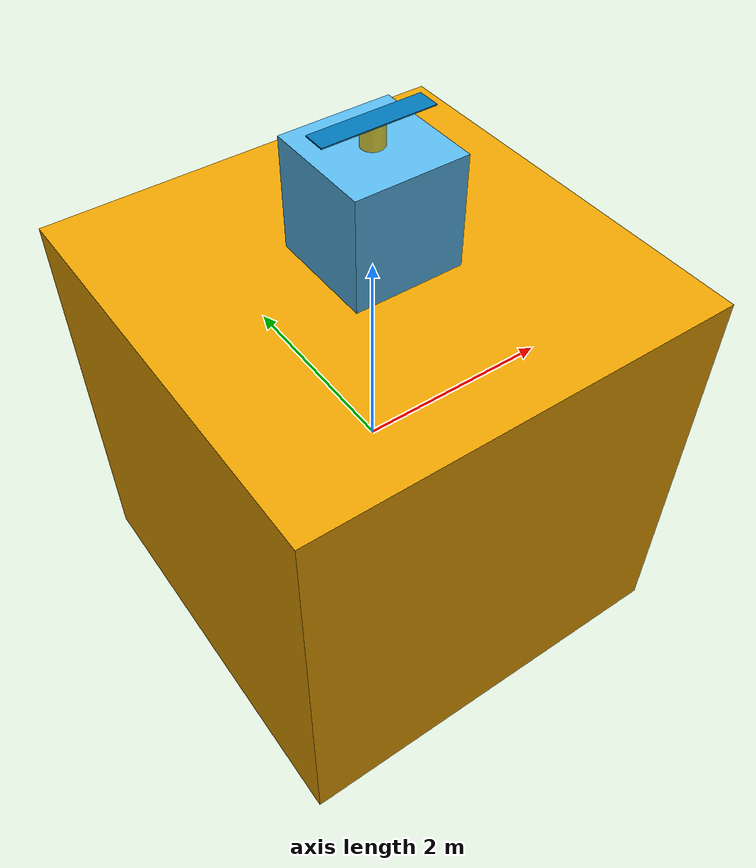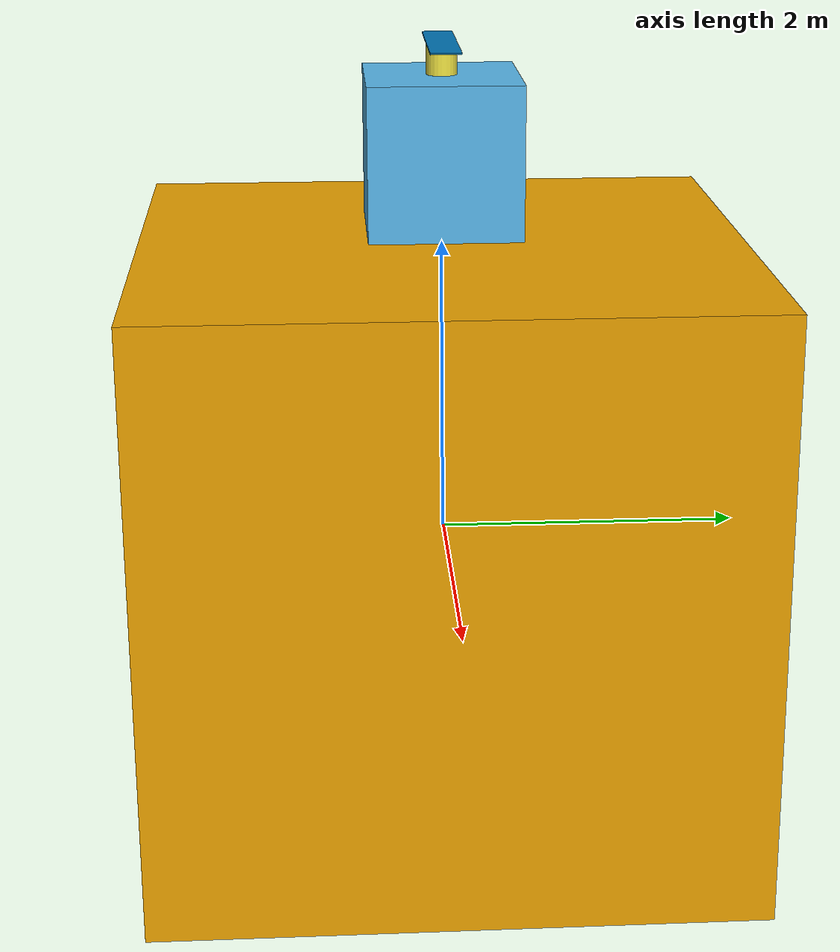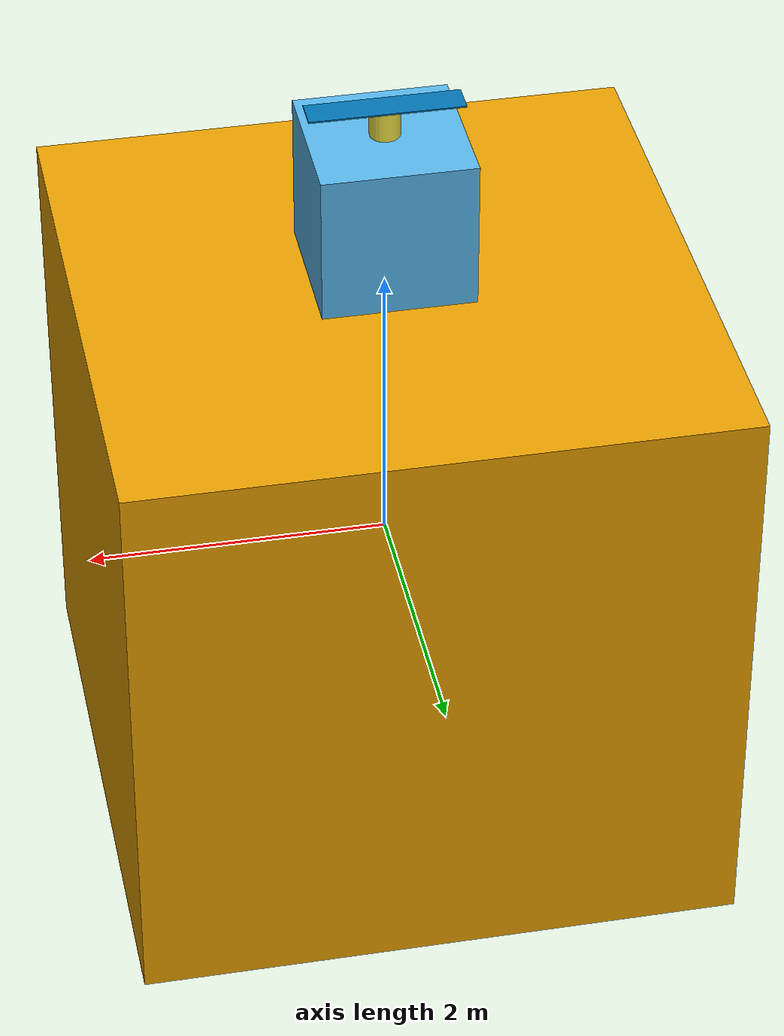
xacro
<robot name="box_" xmlns:xacro="http://www.ros.org/wiki/xacro">

<xacro:property name="width" value="1" />
<xacro:property name="rad" value="0.1" />

<link name="base_link">
	    <visual>
	      <geometry>
	        <box size="${4*width} ${4*width} ${4*width}"/>
	      </geometry>
	    </visual>

	    <collision>
	      <geometry>
	        <box size="${4*width} ${4*width} ${4*width}"/>
	      </geometry>
	    </collision>

	    <inertial>
		    <origin xyz="0 0 0"/>
		    <mass value="10.0"/>
		    <inertia ixx="26.66" ixy="0" ixz="0" iyz="0" iyy="26.66" izz="26.66" />
		</inertial>

 </link>

<link name="base">
	    <visual>
	    <origin xyz="0 0 ${width/2}" />
	      <geometry>
	        <box size="${width} ${width} ${width}"/>
	      </geometry>
	    </visual>

	    <collision>
	    <origin xyz="0 0 ${width/2}" />
	      <geometry>
	        <box size="${width} ${width} ${width}"/>
	      </geometry>
	    </collision>

	    <inertial>
	    <origin xyz="0 0 ${width/2}" />
		    <origin xyz="0 0 0"/>
		    <mass value="0.01"/>
		    <inertia ixx="0.00166" ixy="0" ixz="0" iyz="0" iyy="0.00166" izz="0.00166" />
		</inertial>
 </link>

 <link name="joint_helper">
	    <visual>
	    <origin xyz="0 0 0.05" />
	      <geometry>
	        <box size="0.05 0.05 0.05"/>
	      </geometry>
	    </visual>

	    <collision>
	    <origin xyz="0 0 0.05}" />
	      <geometry>
	        <box size="0.05 0.05 0.05"/>
	      </geometry>
	    </collision>

	    <inertial>
	    <origin xyz="0 0 0.05" />
		    <origin xyz="0 0 0"/>
		    <mass value="0.1"/>
		    <inertia ixx="0.000416" ixy="0" ixz="0" iyz="0" iyy="0.000416" izz="0.000416" />
		</inertial>

 </link>

 <joint name="flap_joint_x" type="revolute">
	    	<origin xyz="0 0 ${2*width}" rpy="0 0 0"/>
	    	<limit effort="1000.0" lower="-1.57" upper="1.57" velocity="0.5"/>
	    	<dynamics friction="100"/>
          <axis xyz="1 0 0"/>
			<parent link="base_link" />
			<child link="joint_helper" />
</joint>

 <joint name="flap_joint_y" type="revolute">
	    	<origin xyz="0 0 0.1" rpy="0 0 0"/>
	    	<limit effort="1000.0" lower="-1.57" upper="1.57" velocity="0.5"/>
	    	<dynamics friction="100"/>
          <axis xyz="0 1 0"/>
			<parent link="joint_helper" />
			<child link="base" />
</joint>

 <link name="arm">
	  	<visual>
	  		<origin xyz="0 0 ${width/10}" />
	  		<geometry>
	  			<cylinder radius="${rad}" length="${width/5}" />
	  		</geometry>
	  	</visual>

	  	<collision>
	  		<origin xyz="0 0 ${width/10}" />
	      <geometry>
	       	<cylinder radius="${rad}" length="${width/5}" />
	      </geometry>
	    </collision>

	    <inertial>
	    	<origin xyz="0 0 ${width/10}" />
		    <mass value="0.01"/>
		    <inertia ixx="0.0000583" ixy="0" ixz="0" iyz="0" iyy="0.0000583" izz="0.00000833" />
		</inertial>

</link>

<joint name="boxToArm" type="continuous">
	    	<origin xyz="0 0 ${width}" rpy="0 0 0"/>
          <axis xyz="0 0 1"/>
			<parent link="base" />
			<child link="arm" />
</joint>

<link name="propeller">
	  	<visual>

	  		<geometry>
	  			<box size="${width} ${width/5} ${width/100}"/>
	  		</geometry>
	  	</visual>

	  	<collision>
          <geometry>
	        <box size="${width} ${width/5} ${width/100}"/>
	      </geometry>
	    </collision>

	    <inertial>
		    <mass value="0.05"/>
		    <inertia ixx="0.00016" ixy="0" ixz="0" iyz="0" iyy=" 0.00416" izz="0.004" />
		</inertial>

</link>

<joint name="armToPropeller" type="fixed">
	    	<origin xyz="0 0 0.2" />
          	<axis xyz="0 0 1"/>
			<parent link="arm" />
			<child link="propeller" />
</joint>

   <gazebo>
   		<plugin name="joint_plugin" filename="libbox_joint_lib.so"/>
   		<plugin name="box_thruster_driver_plugin" filename="libthruster_driver.so"/>
   		<plugin name="box_prop_plugin" filename="libprop_forcer.so"/>
   		<plugin name="box_body_drags_plugin" filename="libbody_drags.so"/>

   	</gazebo>

  </robot>
